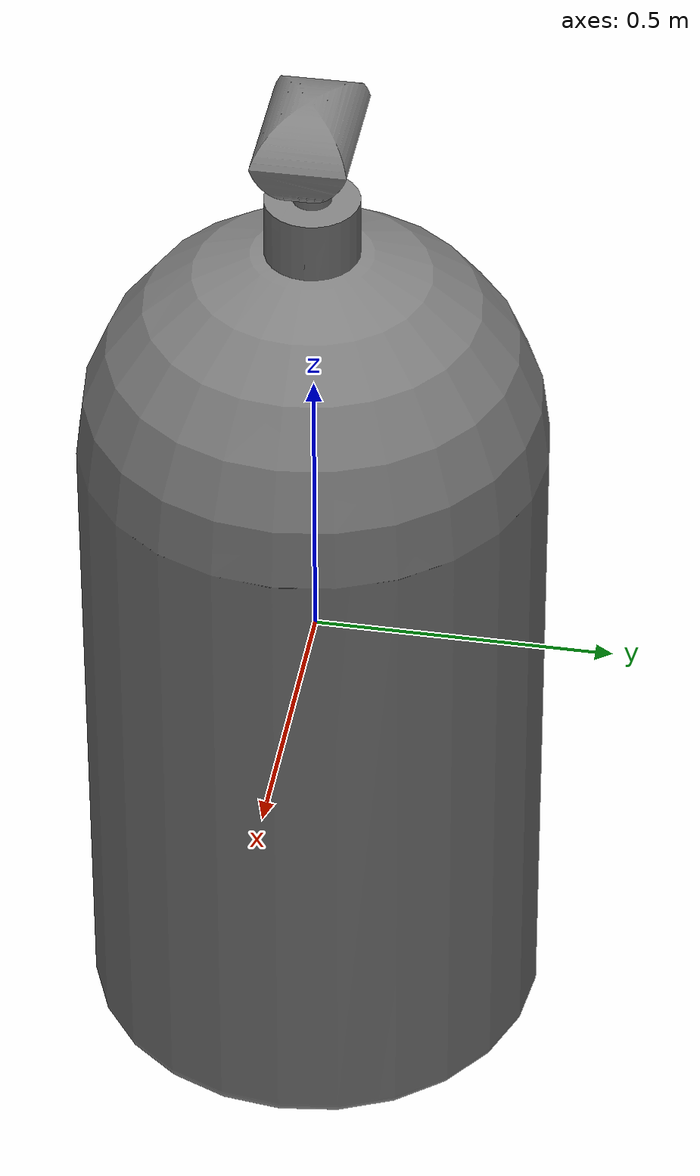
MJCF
<?xml version='1.0' encoding='UTF-8'?>
<mujoco model="partnet_ubd3b13b1-40b1-482c-86bb-5a92603291a2">
  <compiler angle="radian"/>
  <asset>
    <mesh name="original_7" content_type="model/obj" file="textured_objs/original_7.obj"/>
    <mesh name="original_8" content_type="model/obj" file="textured_objs/original_8.obj"/>
    <mesh name="original_6" content_type="model/obj" file="textured_objs/original_6.obj"/>
    <mesh name="original_3" content_type="model/obj" file="textured_objs/original_3.obj"/>
    <mesh name="original_2" content_type="model/obj" file="textured_objs/original_2.obj"/>
  </asset>
  <worldbody>
    <body name="base">
      <body name="link_2" quat="0.5 0.5 -0.5 -0.5">
        <geom type="mesh" mesh="original_3"/>
        <geom type="mesh" mesh="original_2"/>
        <body name="link_1_helper" pos="-0.00156334 0 -0.0127257">
          <inertial pos="0 0 0" mass="1e-06" diaginertia="1e-10 1e-10 1e-10"/>
          <joint name="joint_4" pos="0 0 0" axis="0 1 0" type="slide" range="0 0.02"/>
          <body name="link_1">
            <joint name="joint_1" pos="0 0 0" axis="0 1 0"/>
            <geom pos="0.00156334 0 0.0127257" quat="1 0 0 0" type="mesh" mesh="original_6"/>
            <body name="link_0_helper" pos="-1.64775e-07 0 -2.132e-07">
              <inertial pos="0 0 0" mass="1e-06" diaginertia="1e-10 1e-10 1e-10"/>
              <joint name="joint_3" pos="0 0 0" axis="0 -1 0" type="slide" range="0 0.04"/>
              <body name="link_0">
                <joint name="joint_0" pos="0 0 0" axis="0 1 0"/>
                <geom pos="0.0015635 0 0.0127259" quat="1 0 0 0" type="mesh" mesh="original_7"/>
                <geom pos="0.0015635 0 0.0127259" quat="1 0 0 0" type="mesh" mesh="original_8"/>
              </body>
            </body>
          </body>
        </body>
      </body>
    </body>
  </worldbody>
</mujoco>
